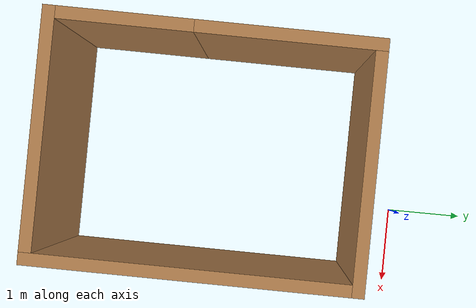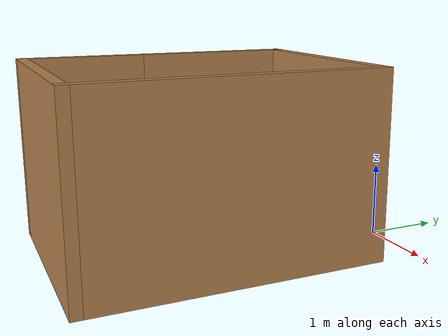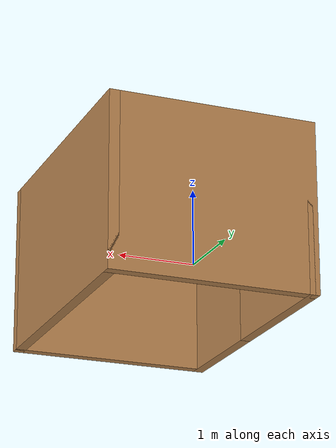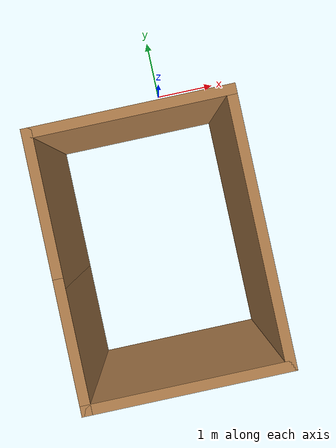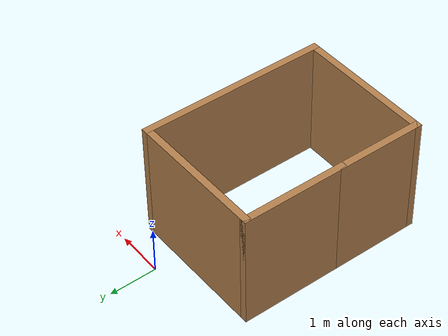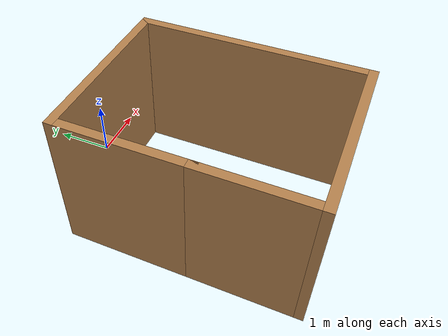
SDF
<?xml version='1.0'?>
<sdf version='1.7'>
  <model name='test_build'>
    <pose>-0.545 -2.2625 0 0 -0 0</pose>
    <link name='Wall_0'>
      <collision name='Wall_0_Collision'>
        <geometry>
          <box>
            <size>2.25 0.15 2.5</size>
          </box>
        </geometry>
        <pose>0 0 1.25 0 -0 0</pose>
      </collision>
      <visual name='Wall_0_Visual'>
        <pose>0 0 1.25 0 -0 0</pose>
        <geometry>
          <box>
            <size>2.25 0.15 2.5</size>
          </box>
        </geometry>
        <material>
          <script>
            <uri>file://media/materials/scripts/gazebo.material</uri>
            <name>Gazebo/Wood</name>
          </script>
          <ambient>1 1 1 1</ambient>
        </material>
        <meta>
          <layer>0</layer>
        </meta>
      </visual>
      <pose>-1.425 0.6125 0 0 -0 1.5708</pose>
    </link>
    <link name='Wall_1'>
      <collision name='Wall_1_Collision'>
        <geometry>
          <box>
            <size>3 0.15 2.5</size>
          </box>
        </geometry>
        <pose>0 0 1.25 0 -0 0</pose>
      </collision>
      <visual name='Wall_1_Visual'>
        <pose>0 0 1.25 0 -0 0</pose>
        <geometry>
          <box>
            <size>3 0.15 2.5</size>
          </box>
        </geometry>
        <material>
          <script>
            <uri>file://media/materials/scripts/gazebo.material</uri>
            <name>Gazebo/Wood</name>
          </script>
          <ambient>1 1 1 1</ambient>
        </material>
        <meta>
          <layer>0</layer>
        </meta>
      </visual>
      <pose>-0 1.6625 0 0 -0 0</pose>
    </link>
    <link name='Wall_2'>
      <collision name='Wall_2_Collision'>
        <geometry>
          <box>
            <size>4 0.15 2.5</size>
          </box>
        </geometry>
        <pose>0 0 1.25 0 -0 0</pose>
      </collision>
      <visual name='Wall_2_Visual'>
        <pose>0 0 1.25 0 -0 0</pose>
        <geometry>
          <box>
            <size>4 0.15 2.5</size>
          </box>
        </geometry>
        <material>
          <script>
            <uri>file://media/materials/scripts/gazebo.material</uri>
            <name>Gazebo/Wood</name>
          </script>
          <ambient>1 1 1 1</ambient>
        </material>
        <meta>
          <layer>0</layer>
        </meta>
      </visual>
      <pose>1.425 -0.2625 0 0 -0 -1.5708</pose>
    </link>
    <link name='Wall_3'>
      <collision name='Wall_3_Collision'>
        <geometry>
          <box>
            <size>3 0.15 2.5</size>
          </box>
        </geometry>
        <pose>0 0 1.25 0 -0 0</pose>
      </collision>
      <visual name='Wall_3_Visual'>
        <pose>0 0 1.25 0 -0 0</pose>
        <geometry>
          <box>
            <size>3 0.15 2.5</size>
          </box>
        </geometry>
        <material>
          <script>
            <uri>file://media/materials/scripts/gazebo.material</uri>
            <name>Gazebo/Wood</name>
          </script>
          <ambient>1 1 1 1</ambient>
        </material>
        <meta>
          <layer>0</layer>
        </meta>
      </visual>
      <pose>-0 -2.1875 0 0 -0 3.14159</pose>
    </link>
    <link name='Wall_4'>
      <collision name='Wall_4_Collision'>
        <geometry>
          <box>
            <size>1.9 0.15 2.5</size>
          </box>
        </geometry>
        <pose>0 0 1.25 0 -0 0</pose>
      </collision>
      <visual name='Wall_4_Visual'>
        <pose>0 0 1.25 0 -0 0</pose>
        <geometry>
          <box>
            <size>1.9 0.15 2.5</size>
          </box>
        </geometry>
        <material>
          <script>
            <uri>file://media/materials/scripts/gazebo.material</uri>
            <name>Gazebo/Wood</name>
          </script>
          <ambient>1 1 1 1</ambient>
        </material>
        <meta>
          <layer>0</layer>
        </meta>
      </visual>
      <pose>-1.425 -1.3125 0 0 -0 1.5708</pose>
    </link>
    <static>1</static>
  </model>
</sdf>
